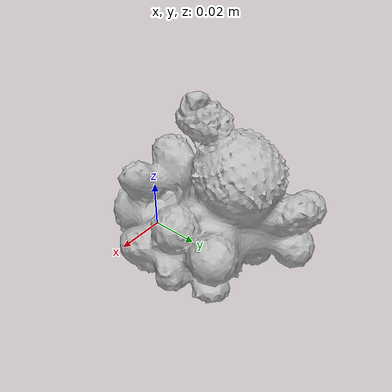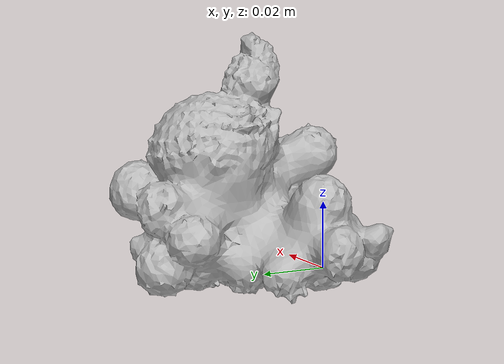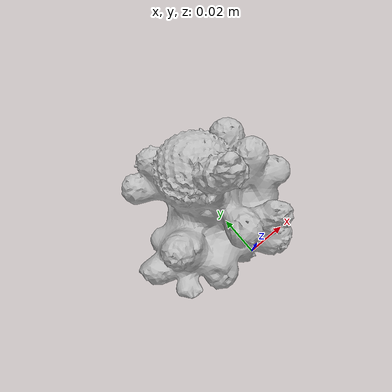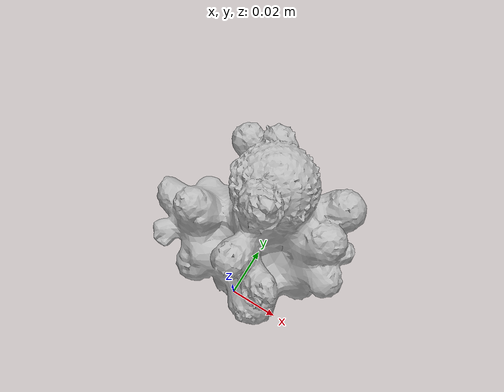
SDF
<?xml version='1.0'?>
<sdf version="1.4">
  <model name="a_marbles">
    <static>false</static>
    <link name="link">
      <inertial>
        <pose>-0.0027500211748439645 0.029165333530540315 0.02215392408992264 2.5070876949071303 -1.1889933644865462 -1.7236571627100317</pose>
        <mass>0.00010889942293808134</mass>
        <inertia>
          <ixx>5.859517781305905e-08</ixx>
          <ixy>5.503714207362336e-24</ixy>
          <ixz>8.86723941730762e-25</ixz>
          <iyy>4.800912606276796e-08</iyy>
          <iyz>5.270311992657671e-24</iyz>
          <izz>4.640843674575477e-08</izz>
        </inertia>
      </inertial>
      <collision name="collision">
        <geometry>
          <mesh>
            <!-- Use a downsampled mesh for collisions -->
            <uri>model://063-a_marbles/google_16k/063-a_marbles.obj</uri>
            </mesh>
        </geometry>
        <surface>
          <friction>
            <ode>
              <mu>0.9</mu>
              <mu2>0.9</mu2>
            </ode>
          </friction>
          <contact>
            <ode>
              <kp>1000000000000.0</kp>
              <kd>1</kd>
              <min_depth>0.0001</min_depth>
              <max_vel>0.01</max_vel>
            </ode>
          </contact>
          <bounce>
            <restitution_coefficient>0.1</restitution_coefficient>
            <threshold>1000.0</threshold>
          </bounce>
        </surface>
      </collision>
      <visual name="visual">
        <geometry>
          <mesh>
            <uri>model://063-a_marbles/google_16k/063-a_marbles.dae</uri>
            </mesh>
        </geometry>
      </visual>
    </link>
  </model>
</sdf>
